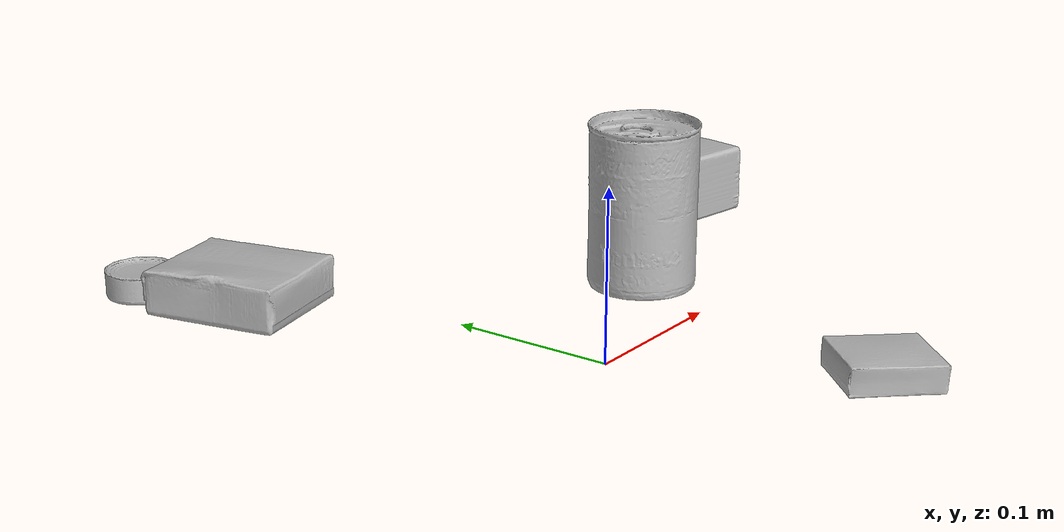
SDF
<sdf version="1.4">
  <world name="default">
    <light name="light1" type="point">
      <pose>0 0 1 0 0 0</pose>
      <diffuse>3 3 3 1</diffuse>
      <specular>3 3 3 1</specular>
    </light>
    <light name="light2" type="point">
      <pose>0 0.5 2 0 0 0</pose>
      <diffuse>1 1 1 1</diffuse>
      <specular>1 1 1 1</specular>
    </light>
    <light name="light3" type="point">
      <pose>0 0.5 2 0 0 0</pose>
      <diffuse>3 3 3 1</diffuse>
      <specular>3 3 3 1</specular>
    </light>
    <scene>
      <ambient>0.7 0.7 0.7</ambient>
    </scene>
    <model name="box1">
      <link name="link_box1">
        <collision name="default">
          <geometry>
            <mesh>
              <uri>model://pudding_box/collision_meshes/collision.obj</uri>
              <scale>0.5 0.5 0.5</scale>
            </mesh>
          </geometry>
          <surface>
            <friction>
              <ode>
                <mu>0.5</mu>
                <mu2>0.5</mu2>
              </ode>
            </friction>
          <contact>
        <ode>
            <max_vel>0</max_vel>
            <min_depth>0.0001</min_depth>
            <kp>1e8</kp>
        </ode>
    </contact></surface>
        </collision>
        <visual name="default">
          <geometry>
            <mesh>
              <uri>model://pudding_box/visual_meshes/visual.dae</uri>
              <scale>0.5 0.5 0.5</scale>
            </mesh>
          </geometry>
        </visual>
        <inertial>
          <mass>0.049221161752939224</mass>
          <pose>0.00024474109522998333 0.00040339428232982755 -0.0002594413817860186 0.005213101772454675 -0.006603800120423707 0.020079827019105066</pose>
          <inertia>
            <ixx>1.3910499e-05</ixx>
            <iyy>9.3590825e-06</iyy>
            <izz>2.0542482e-05</izz>
            <ixy>0</ixy>
            <ixz>0</ixz>
            <iyz>0</iyz>
          </inertia>
        </inertial>
      </link>
      <pose>0.06698795408010483 -0.13217350840568542 0.009862902574241161 0.022348155381329563 -0.011391978551146063 0.8132949533513298</pose>
    </model>
    <model name="box2">
      <link name="link_box2">
        <collision name="default">
          <geometry>
            <mesh>
              <uri>model://gelatin_box/collision_meshes/collision.obj</uri>
              <scale>1.0 1.0 1.0</scale>
            </mesh>
          </geometry>
          <surface>
            <friction>
              <ode>
                <mu>0.5</mu>
                <mu2>0.5</mu2>
              </ode>
            </friction>
          <contact>
        <ode>
            <max_vel>0</max_vel>
            <min_depth>0.0001</min_depth>
            <kp>1e8</kp>
        </ode>
    </contact></surface>
        </collision>
        <visual name="default">
          <geometry>
            <mesh>
              <uri>model://gelatin_box/visual_meshes/visual.dae</uri>
              <scale>1.0 1.0 1.0</scale>
            </mesh>
          </geometry>
        </visual>
        <inertial>
          <mass>0.1975366622209549</mass>
          <pose>0.000431961816502735 0.00011156871187267825 -0.00036403207923285663 -0.0010503719683328595 -0.0047558182256164224 0.016440557608480007</pose>
          <inertia>
            <ixx>0.00013944478</ixx>
            <iyy>9.960467e-05</iyy>
            <izz>0.00021226601</izz>
            <ixy>0</ixy>
            <ixz>0</ixz>
            <iyz>0</iyz>
          </inertia>
        </inertial>
      </link>
      <pose>-0.05521814897656441 0.2224474996328354 0.015168322250247002 0.005597442253730212 -0.0073045829191943626 -2.9314543013075456</pose>
    </model>
    <model name="box3">
      <link name="link_box3">
        <collision name="default">
          <geometry>
            <mesh>
              <uri>model://wood_block/collision_meshes/collision.obj</uri>
              <scale>0.5 0.5 0.5</scale>
            </mesh>
          </geometry>
          <surface>
            <friction>
              <ode>
                <mu>0.5</mu>
                <mu2>0.5</mu2>
              </ode>
            </friction>
          <contact>
        <ode>
            <max_vel>0</max_vel>
            <min_depth>0.0001</min_depth>
            <kp>1e8</kp>
        </ode>
    </contact></surface>
        </collision>
        <visual name="default">
          <geometry>
            <mesh>
              <uri>model://wood_block/visual_meshes/visual.dae</uri>
              <scale>0.5 0.5 0.5</scale>
            </mesh>
          </geometry>
        </visual>
        <inertial>
          <mass>0.2799808979034424</mass>
          <pose>-2.9066577553749084e-06 -0.000285404734313488 0.00013204291462898254 -0.05220811074253327 -0.005192695744074178 -0.0068613776969266935</pose>
          <inertia>
            <ixx>9.3664195e-05</ixx>
            <iyy>0.0002958853</iyy>
            <izz>0.00029477844</izz>
            <ixy>0</ixy>
            <ixz>0</ixz>
            <iyz>0</iyz>
          </inertia>
        </inertial>
      </link>
      <pose>0.24525821208953857 0.11423393338918686 0.022629261016845703 -0.005208658998290954 0.005718716941537101 -0.1726406349174664</pose>
    </model>
    <model name="can1">
      <link name="link_can1">
        <collision name="default">
          <geometry>
            <mesh>
              <uri>model://tomato_soup_can/collision_meshes/collision.obj</uri>
              <scale>1.0 1.0 1.0</scale>
            </mesh>
          </geometry>
          <surface>
            <friction>
              <ode>
                <mu>0.5</mu>
                <mu2>0.5</mu2>
              </ode>
            </friction>
          <contact>
        <ode>
            <max_vel>0</max_vel>
            <min_depth>0.0001</min_depth>
            <kp>1e8</kp>
        </ode>
    </contact></surface>
        </collision>
        <visual name="default">
          <geometry>
            <mesh>
              <uri>model://tomato_soup_can/visual_meshes/visual.dae</uri>
              <scale>1.0 1.0 1.0</scale>
            </mesh>
          </geometry>
        </visual>
        <inertial>
          <mass>0.35683923959732056</mass>
          <pose>0.00012652271834667772 0.00010805513738887385 -0.0017973982030525804 0.007020067402313596 0.00042299257688944205 -0.009903281374499336</pose>
          <inertia>
            <ixx>0.0003912439</ixx>
            <iyy>0.00038898273</iyy>
            <izz>0.00020277809</izz>
            <ixy>0</ixy>
            <ixz>0</ixz>
            <iyz>0</iyz>
          </inertia>
        </inertial>
      </link>
      <pose>0.12104558944702148 0.05494542419910431 0.05127400532364845 -3.038777280306736e-07 -3.022187995553993e-07 -2.6895319681143106</pose>
    </model>
    <model name="can2">
      <link name="link_can2">
        <collision name="default">
          <geometry>
            <mesh>
              <uri>model://tuna_fish_can/collision_meshes/collision.obj</uri>
              <scale>0.5 0.5 0.5</scale>
            </mesh>
          </geometry>
          <surface>
            <friction>
              <ode>
                <mu>0.5</mu>
                <mu2>0.5</mu2>
              </ode>
            </friction>
          <contact>
        <ode>
            <max_vel>0</max_vel>
            <min_depth>0.0001</min_depth>
            <kp>1e8</kp>
        </ode>
    </contact></surface>
        </collision>
        <visual name="default">
          <geometry>
            <mesh>
              <uri>model://tuna_fish_can/visual_meshes/visual.dae</uri>
              <scale>0.5 0.5 0.5</scale>
            </mesh>
          </geometry>
        </visual>
        <inertial>
          <mass>0.011508840136229992</mass>
          <pose>-2.0362092982395552e-05 -7.256176559167216e-06 -0.0005269026150926948 -0.0017944756095399476 0.0001716207335623094 0.24053890436657652</pose>
          <inertia>
            <ixx>1.5560124e-06</ixx>
            <iyy>1.5495272e-06</iyy>
            <izz>2.662559e-06</izz>
            <ixy>0</ixy>
            <ixz>0</ixz>
            <iyz>0</iyz>
          </inertia>
        </inertial>
      </link>
      <pose>-0.07451047748327255 0.2861554026603699 0.00851999782025814 -2.8863605755166154e-09 1.902683438006002e-08 2.995562872817937</pose>
    </model>
  <physics type="ode">
      <max_contacts>50</max_contacts>
      <ode>
        <solver>
          <type>quick</type>
          <iters>75</iters>
        </solver>
        <constraints>
          <contact_max_correcting_vel>0</contact_max_correcting_vel>
          <contact_surface_layer>0</contact_surface_layer>
        </constraints>
      </ode>
    </physics></world>
</sdf>
